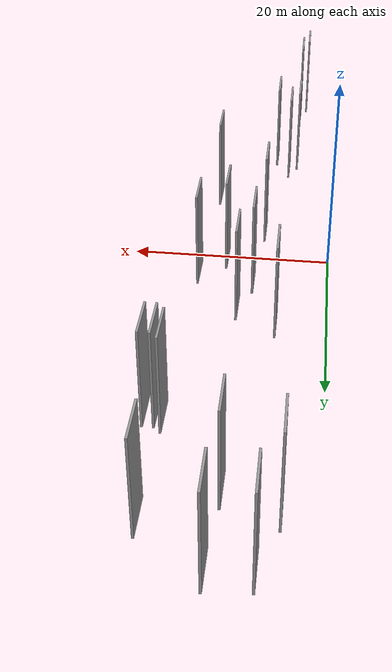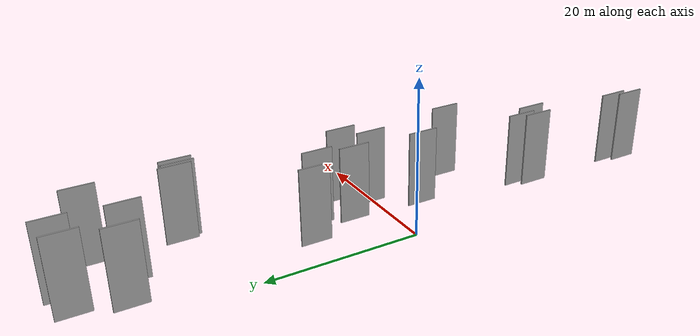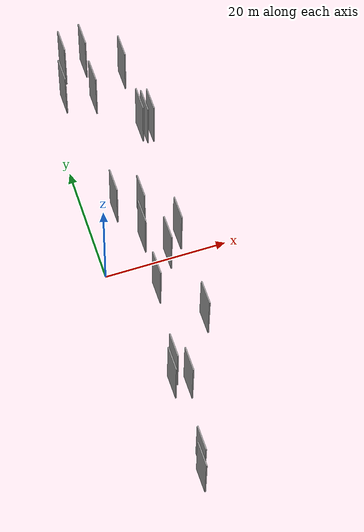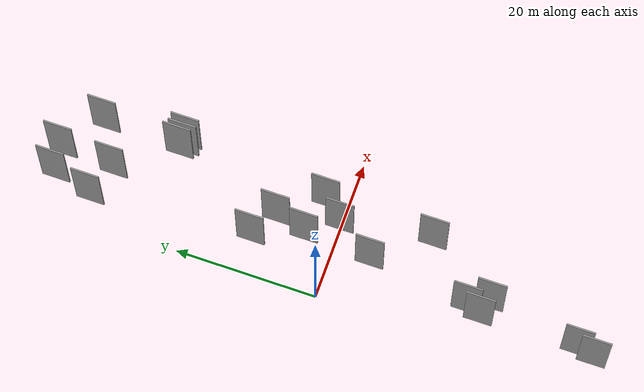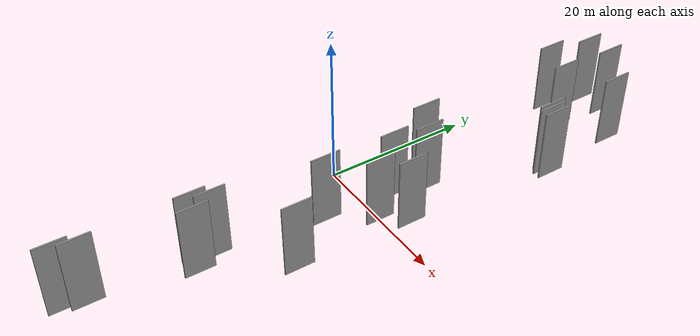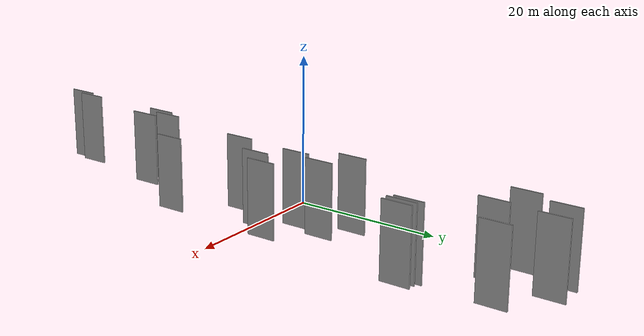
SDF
<sdf version="1.6">
 <world name="default">
  <scene>
   <sky><clouds><speed>12</speed></clouds></sky>
   <ambient>0.4 0.4 0.4 1</ambient>
   <background>0.7 0.7 0.7 1</background>
   <shadows>1</shadows>
  </scene>
  <gravity>0 0 -9.8066</gravity>
  <magnetic_field>6e-06 2.3e-05 -4.2e-05</magnetic_field>
  <physics default="0" name="default_physics" type="ode">
   <ode>
    <solver>
     <type>quick</type>
     <iters>10</iters>
     <sor>1.0</sor>
     <use_dynamic_moi_rescaling>0</use_dynamic_moi_rescaling>
    </solver>
    <constraints>
     <cfm>0</cfm>
     <erp>0.2</erp>
     <contact_max_correcting_vel>100</contact_max_correcting_vel>
     <contact_surface_layer>0.001</contact_surface_layer>
    </constraints>
   </ode>
   <max_step_size>0.004</max_step_size>
   <real_time_factor>1</real_time_factor>
   <real_time_update_rate>250</real_time_update_rate>
  </physics>
  <light name="sun" type="directional">
   <pose>0 0 10 0 0 0</pose>
   <diffuse>0.8 0.8 0.8 1</diffuse>
   <specular>0.2 0.2 0.2 1</specular>
   <attenuation>
    <range>1000</range>
    <constant>0.9</constant>
    <linear>0.01</linear>
    <quadratic>0.001</quadratic>
   </attenuation>
   <direction>-0.5 0.1 -0.9</direction>
  </light>
  <model name="grey_wall_1">
   <static>1</static>
   <pose>7.3902 4.2651 0.0 0.000000 0.000000 1.570796</pose>
   <link name="link">
    <pose>0 0 5.00 0 0 0</pose>
    <collision name="collision"><geometry><box><size>4.00 0.2 10.00</size></box></geometry></collision>
    <visual name="visual">
     <cast_shadows>0</cast_shadows>
     <geometry><box><size>4.00 0.2 10.00</size></box></geometry>
     <material>
      <script>
       <uri>model://grey_wall/materials/scripts</uri>
       <uri>model://grey_wall/materials/textures</uri>
       <name>vrc/grey_wall</name>
      </script>
     </material>
    </visual>
   </link>
  </model>
  <model name="grey_wall_2">
   <static>1</static>
   <pose>14.0887 23.8651 0.0 0.000000 0.000000 1.570796</pose>
   <link name="link">
    <pose>0 0 5.00 0 0 0</pose>
    <collision name="collision"><geometry><box><size>4.00 0.2 10.00</size></box></geometry></collision>
    <visual name="visual">
     <cast_shadows>0</cast_shadows>
     <geometry><box><size>4.00 0.2 10.00</size></box></geometry>
     <material>
      <script>
       <uri>model://grey_wall/materials/scripts</uri>
       <uri>model://grey_wall/materials/textures</uri>
       <name>vrc/grey_wall</name>
      </script>
     </material>
    </visual>
   </link>
  </model>
  <model name="grey_wall_3">
   <static>1</static>
   <pose>15.0856 23.8370 0.0 0.000000 0.000000 1.570796</pose>
   <link name="link">
    <pose>0 0 5.00 0 0 0</pose>
    <collision name="collision"><geometry><box><size>4.00 0.2 10.00</size></box></geometry></collision>
    <visual name="visual">
     <cast_shadows>0</cast_shadows>
     <geometry><box><size>4.00 0.2 10.00</size></box></geometry>
     <material>
      <script>
       <uri>model://grey_wall/materials/scripts</uri>
       <uri>model://grey_wall/materials/textures</uri>
       <name>vrc/grey_wall</name>
      </script>
     </material>
    </visual>
   </link>
  </model>
  <model name="grey_wall_4">
   <static>1</static>
   <pose>3.0893 33.5921 0.0 0.000000 0.000000 1.570796</pose>
   <link name="link">
    <pose>0 0 5.00 0 0 0</pose>
    <collision name="collision"><geometry><box><size>4.00 0.2 10.00</size></box></geometry></collision>
    <visual name="visual">
     <cast_shadows>0</cast_shadows>
     <geometry><box><size>4.00 0.2 10.00</size></box></geometry>
     <material>
      <script>
       <uri>model://grey_wall/materials/scripts</uri>
       <uri>model://grey_wall/materials/textures</uri>
       <name>vrc/grey_wall</name>
      </script>
     </material>
    </visual>
   </link>
  </model>
  <model name="grey_wall_5">
   <static>1</static>
   <pose>3.2515 -37.6467 0.0 0.000000 0.000000 1.570796</pose>
   <link name="link">
    <pose>0 0 5.00 0 0 0</pose>
    <collision name="collision"><geometry><box><size>4.00 0.2 10.00</size></box></geometry></collision>
    <visual name="visual">
     <cast_shadows>0</cast_shadows>
     <geometry><box><size>4.00 0.2 10.00</size></box></geometry>
     <material>
      <script>
       <uri>model://grey_wall/materials/scripts</uri>
       <uri>model://grey_wall/materials/textures</uri>
       <name>vrc/grey_wall</name>
      </script>
     </material>
    </visual>
   </link>
  </model>
  <model name="grey_wall_6">
   <static>1</static>
   <pose>12.9603 3.0731 0.0 0.000000 0.000000 1.570796</pose>
   <link name="link">
    <pose>0 0 5.00 0 0 0</pose>
    <collision name="collision"><geometry><box><size>4.00 0.2 10.00</size></box></geometry></collision>
    <visual name="visual">
     <cast_shadows>0</cast_shadows>
     <geometry><box><size>4.00 0.2 10.00</size></box></geometry>
     <material>
      <script>
       <uri>model://grey_wall/materials/scripts</uri>
       <uri>model://grey_wall/materials/textures</uri>
       <name>vrc/grey_wall</name>
      </script>
     </material>
    </visual>
   </link>
  </model>
  <model name="grey_wall_7">
   <static>1</static>
   <pose>10.3442 0.1792 0.0 0.000000 0.000000 1.570796</pose>
   <link name="link">
    <pose>0 0 5.00 0 0 0</pose>
    <collision name="collision"><geometry><box><size>4.00 0.2 10.00</size></box></geometry></collision>
    <visual name="visual">
     <cast_shadows>0</cast_shadows>
     <geometry><box><size>4.00 0.2 10.00</size></box></geometry>
     <material>
      <script>
       <uri>model://grey_wall/materials/scripts</uri>
       <uri>model://grey_wall/materials/textures</uri>
       <name>vrc/grey_wall</name>
      </script>
     </material>
    </visual>
   </link>
  </model>
  <model name="grey_wall_8">
   <static>1</static>
   <pose>3.9194 -21.5968 0.0 0.000000 0.000000 1.570796</pose>
   <link name="link">
    <pose>0 0 5.00 0 0 0</pose>
    <collision name="collision"><geometry><box><size>4.00 0.2 10.00</size></box></geometry></collision>
    <visual name="visual">
     <cast_shadows>0</cast_shadows>
     <geometry><box><size>4.00 0.2 10.00</size></box></geometry>
     <material>
      <script>
       <uri>model://grey_wall/materials/scripts</uri>
       <uri>model://grey_wall/materials/textures</uri>
       <name>vrc/grey_wall</name>
      </script>
     </material>
    </visual>
   </link>
  </model>
  <model name="grey_wall_9">
   <static>1</static>
   <pose>4.6386 39.1817 0.0 0.000000 0.000000 1.570796</pose>
   <link name="link">
    <pose>0 0 5.00 0 0 0</pose>
    <collision name="collision"><geometry><box><size>4.00 0.2 10.00</size></box></geometry></collision>
    <visual name="visual">
     <cast_shadows>0</cast_shadows>
     <geometry><box><size>4.00 0.2 10.00</size></box></geometry>
     <material>
      <script>
       <uri>model://grey_wall/materials/scripts</uri>
       <uri>model://grey_wall/materials/textures</uri>
       <name>vrc/grey_wall</name>
      </script>
     </material>
    </visual>
   </link>
  </model>
  <model name="grey_wall_10">
   <static>1</static>
   <pose>3.9872 -35.1981 0.0 0.000000 0.000000 1.570796</pose>
   <link name="link">
    <pose>0 0 5.00 0 0 0</pose>
    <collision name="collision"><geometry><box><size>4.00 0.2 10.00</size></box></geometry></collision>
    <visual name="visual">
     <cast_shadows>0</cast_shadows>
     <geometry><box><size>4.00 0.2 10.00</size></box></geometry>
     <material>
      <script>
       <uri>model://grey_wall/materials/scripts</uri>
       <uri>model://grey_wall/materials/textures</uri>
       <name>vrc/grey_wall</name>
      </script>
     </material>
    </visual>
   </link>
  </model>
  <model name="grey_wall_11">
   <static>1</static>
   <pose>12.2621 -12.4754 0.0 0.000000 0.000000 1.570796</pose>
   <link name="link">
    <pose>0 0 5.00 0 0 0</pose>
    <collision name="collision"><geometry><box><size>4.00 0.2 10.00</size></box></geometry></collision>
    <visual name="visual">
     <cast_shadows>0</cast_shadows>
     <geometry><box><size>4.00 0.2 10.00</size></box></geometry>
     <material>
      <script>
       <uri>model://grey_wall/materials/scripts</uri>
       <uri>model://grey_wall/materials/textures</uri>
       <name>vrc/grey_wall</name>
      </script>
     </material>
    </visual>
   </link>
  </model>
  <model name="grey_wall_12">
   <static>1</static>
   <pose>4.7992 10.9709 0.0 0.000000 0.000000 1.570796</pose>
   <link name="link">
    <pose>0 0 5.00 0 0 0</pose>
    <collision name="collision"><geometry><box><size>4.00 0.2 10.00</size></box></geometry></collision>
    <visual name="visual">
     <cast_shadows>0</cast_shadows>
     <geometry><box><size>4.00 0.2 10.00</size></box></geometry>
     <material>
      <script>
       <uri>model://grey_wall/materials/scripts</uri>
       <uri>model://grey_wall/materials/textures</uri>
       <name>vrc/grey_wall</name>
      </script>
     </material>
    </visual>
   </link>
  </model>
  <model name="grey_wall_13">
   <static>1</static>
   <pose>13.4508 24.4214 0.0 0.000000 0.000000 1.570796</pose>
   <link name="link">
    <pose>0 0 5.00 0 0 0</pose>
    <collision name="collision"><geometry><box><size>4.00 0.2 10.00</size></box></geometry></collision>
    <visual name="visual">
     <cast_shadows>0</cast_shadows>
     <geometry><box><size>4.00 0.2 10.00</size></box></geometry>
     <material>
      <script>
       <uri>model://grey_wall/materials/scripts</uri>
       <uri>model://grey_wall/materials/textures</uri>
       <name>vrc/grey_wall</name>
      </script>
     </material>
    </visual>
   </link>
  </model>
  <model name="grey_wall_14">
   <static>1</static>
   <pose>6.7664 -5.2816 0.0 0.000000 0.000000 1.570796</pose>
   <link name="link">
    <pose>0 0 5.00 0 0 0</pose>
    <collision name="collision"><geometry><box><size>4.00 0.2 10.00</size></box></geometry></collision>
    <visual name="visual">
     <cast_shadows>0</cast_shadows>
     <geometry><box><size>4.00 0.2 10.00</size></box></geometry>
     <material>
      <script>
       <uri>model://grey_wall/materials/scripts</uri>
       <uri>model://grey_wall/materials/textures</uri>
       <name>vrc/grey_wall</name>
      </script>
     </material>
    </visual>
   </link>
  </model>
  <model name="grey_wall_15">
   <static>1</static>
   <pose>8.6253 8.6514 0.0 0.000000 0.000000 1.570796</pose>
   <link name="link">
    <pose>0 0 5.00 0 0 0</pose>
    <collision name="collision"><geometry><box><size>4.00 0.2 10.00</size></box></geometry></collision>
    <visual name="visual">
     <cast_shadows>0</cast_shadows>
     <geometry><box><size>4.00 0.2 10.00</size></box></geometry>
     <material>
      <script>
       <uri>model://grey_wall/materials/scripts</uri>
       <uri>model://grey_wall/materials/textures</uri>
       <name>vrc/grey_wall</name>
      </script>
     </material>
    </visual>
   </link>
  </model>
  <model name="grey_wall_16">
   <static>1</static>
   <pose>13.7812 35.2899 0.0 0.000000 0.000000 1.570796</pose>
   <link name="link">
    <pose>0 0 5.00 0 0 0</pose>
    <collision name="collision"><geometry><box><size>4.00 0.2 10.00</size></box></geometry></collision>
    <visual name="visual">
     <cast_shadows>0</cast_shadows>
     <geometry><box><size>4.00 0.2 10.00</size></box></geometry>
     <material>
      <script>
       <uri>model://grey_wall/materials/scripts</uri>
       <uri>model://grey_wall/materials/textures</uri>
       <name>vrc/grey_wall</name>
      </script>
     </material>
    </visual>
   </link>
  </model>
  <model name="grey_wall_17">
   <static>1</static>
   <pose>4.8405 -19.5422 0.0 0.000000 0.000000 1.570796</pose>
   <link name="link">
    <pose>0 0 5.00 0 0 0</pose>
    <collision name="collision"><geometry><box><size>4.00 0.2 10.00</size></box></geometry></collision>
    <visual name="visual">
     <cast_shadows>0</cast_shadows>
     <geometry><box><size>4.00 0.2 10.00</size></box></geometry>
     <material>
      <script>
       <uri>model://grey_wall/materials/scripts</uri>
       <uri>model://grey_wall/materials/textures</uri>
       <name>vrc/grey_wall</name>
      </script>
     </material>
    </visual>
   </link>
  </model>
  <model name="grey_wall_18">
   <static>1</static>
   <pose>8.2964 39.4989 0.0 0.000000 0.000000 1.570796</pose>
   <link name="link">
    <pose>0 0 5.00 0 0 0</pose>
    <collision name="collision"><geometry><box><size>4.00 0.2 10.00</size></box></geometry></collision>
    <visual name="visual">
     <cast_shadows>0</cast_shadows>
     <geometry><box><size>4.00 0.2 10.00</size></box></geometry>
     <material>
      <script>
       <uri>model://grey_wall/materials/scripts</uri>
       <uri>model://grey_wall/materials/textures</uri>
       <name>vrc/grey_wall</name>
      </script>
     </material>
    </visual>
   </link>
  </model>
  <model name="grey_wall_19">
   <static>1</static>
   <pose>7.7733 31.9642 0.0 0.000000 0.000000 1.570796</pose>
   <link name="link">
    <pose>0 0 5.00 0 0 0</pose>
    <collision name="collision"><geometry><box><size>4.00 0.2 10.00</size></box></geometry></collision>
    <visual name="visual">
     <cast_shadows>0</cast_shadows>
     <geometry><box><size>4.00 0.2 10.00</size></box></geometry>
     <material>
      <script>
       <uri>model://grey_wall/materials/scripts</uri>
       <uri>model://grey_wall/materials/textures</uri>
       <name>vrc/grey_wall</name>
      </script>
     </material>
    </visual>
   </link>
  </model>
  <model name="grey_wall_20">
   <static>1</static>
   <pose>6.3247 -22.3999 0.0 0.000000 0.000000 1.570796</pose>
   <link name="link">
    <pose>0 0 5.00 0 0 0</pose>
    <collision name="collision"><geometry><box><size>4.00 0.2 10.00</size></box></geometry></collision>
    <visual name="visual">
     <cast_shadows>0</cast_shadows>
     <geometry><box><size>4.00 0.2 10.00</size></box></geometry>
     <material>
      <script>
       <uri>model://grey_wall/materials/scripts</uri>
       <uri>model://grey_wall/materials/textures</uri>
       <name>vrc/grey_wall</name>
      </script>
     </material>
    </visual>
   </link>
  </model>
 </world>
</sdf>
